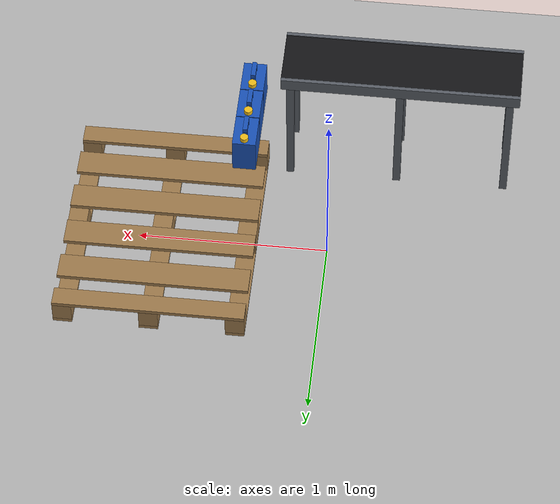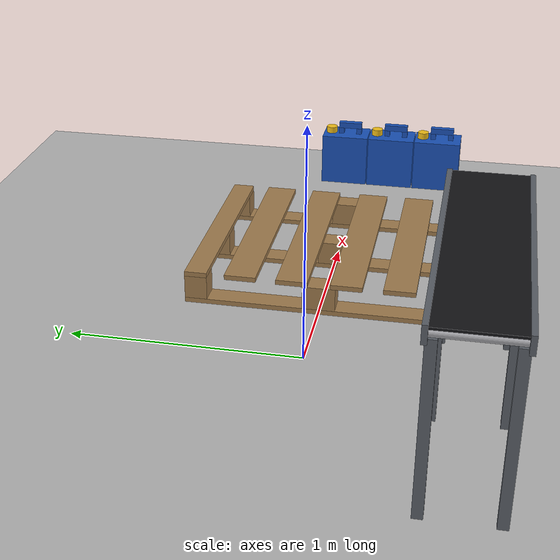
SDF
<sdf version="1.8">
 <world name="moz1_jerrycan">
  <model name="ground_plane">
   <static>true</static>
   <link name="link">
    <collision name="c"><geometry><plane><normal>0 0 1</normal><size>100 100</size></plane></geometry></collision>
    <visual name="v">
     <geometry><plane><normal>0 0 1</normal><size>100 100</size></plane></geometry>
     <material><ambient>0.7 0.7 0.7 1</ambient><diffuse>0.7 0.7 0.7 1</diffuse></material>
    </visual>
   </link>
  </model>
  <model name="pallet">
   <static>true</static>
   <pose>0.3710 0.0000 0.0000 0 0 0</pose>
   <link name="link">
    <collision name="c">
     <pose>0.5000 0.0000 0.0750 0 0 0</pose>
     <geometry><box><size>1.0000 1.2000 0.1500</size></box></geometry>
    </collision>
    <visual name="deck0">
     <pose>0.5000 -0.5500 0.1390 0 0 0</pose>
     <geometry><box><size>1.0000 0.1000 0.0220</size></box></geometry>
     <material><ambient>0.62 0.48 0.30 1</ambient><diffuse>0.62 0.48 0.30 1</diffuse></material>
    </visual>
    <visual name="deck1">
     <pose>0.5000 -0.3500 0.1390 0 0 0</pose>
     <geometry><box><size>1.0000 0.1400 0.0220</size></box></geometry>
     <material><ambient>0.62 0.48 0.30 1</ambient><diffuse>0.62 0.48 0.30 1</diffuse></material>
    </visual>
    <visual name="deck2">
     <pose>0.5000 -0.1200 0.1390 0 0 0</pose>
     <geometry><box><size>1.0000 0.1400 0.0220</size></box></geometry>
     <material><ambient>0.62 0.48 0.30 1</ambient><diffuse>0.62 0.48 0.30 1</diffuse></material>
    </visual>
    <visual name="deck3">
     <pose>0.5000 0.1200 0.1390 0 0 0</pose>
     <geometry><box><size>1.0000 0.1400 0.0220</size></box></geometry>
     <material><ambient>0.62 0.48 0.30 1</ambient><diffuse>0.62 0.48 0.30 1</diffuse></material>
    </visual>
    <visual name="deck4">
     <pose>0.5000 0.3500 0.1390 0 0 0</pose>
     <geometry><box><size>1.0000 0.1400 0.0220</size></box></geometry>
     <material><ambient>0.62 0.48 0.30 1</ambient><diffuse>0.62 0.48 0.30 1</diffuse></material>
    </visual>
    <visual name="deck5">
     <pose>0.5000 0.5500 0.1390 0 0 0</pose>
     <geometry><box><size>1.0000 0.1000 0.0220</size></box></geometry>
     <material><ambient>0.62 0.48 0.30 1</ambient><diffuse>0.62 0.48 0.30 1</diffuse></material>
    </visual>
    <visual name="bottom0">
     <pose>0.0500 0.0000 0.0110 0 0 0</pose>
     <geometry><box><size>0.1000 1.2000 0.0220</size></box></geometry>
     <material><ambient>0.62 0.48 0.30 1</ambient><diffuse>0.62 0.48 0.30 1</diffuse></material>
    </visual>
    <visual name="block00">
     <pose>0.0500 -0.5500 0.0750 0 0 0</pose>
     <geometry><box><size>0.1000 0.1000 0.1060</size></box></geometry>
     <material><ambient>0.62 0.48 0.30 1</ambient><diffuse>0.62 0.48 0.30 1</diffuse></material>
    </visual>
    <visual name="block01">
     <pose>0.0500 0.0000 0.0750 0 0 0</pose>
     <geometry><box><size>0.1000 0.1450 0.1060</size></box></geometry>
     <material><ambient>0.62 0.48 0.30 1</ambient><diffuse>0.62 0.48 0.30 1</diffuse></material>
    </visual>
    <visual name="block02">
     <pose>0.0500 0.5500 0.0750 0 0 0</pose>
     <geometry><box><size>0.1000 0.1000 0.1060</size></box></geometry>
     <material><ambient>0.62 0.48 0.30 1</ambient><diffuse>0.62 0.48 0.30 1</diffuse></material>
    </visual>
    <visual name="bottom1">
     <pose>0.5000 0.0000 0.0110 0 0 0</pose>
     <geometry><box><size>0.1000 1.2000 0.0220</size></box></geometry>
     <material><ambient>0.62 0.48 0.30 1</ambient><diffuse>0.62 0.48 0.30 1</diffuse></material>
    </visual>
    <visual name="block10">
     <pose>0.5000 -0.5500 0.0750 0 0 0</pose>
     <geometry><box><size>0.1000 0.1000 0.1060</size></box></geometry>
     <material><ambient>0.62 0.48 0.30 1</ambient><diffuse>0.62 0.48 0.30 1</diffuse></material>
    </visual>
    <visual name="block11">
     <pose>0.5000 0.0000 0.0750 0 0 0</pose>
     <geometry><box><size>0.1000 0.1450 0.1060</size></box></geometry>
     <material><ambient>0.62 0.48 0.30 1</ambient><diffuse>0.62 0.48 0.30 1</diffuse></material>
    </visual>
    <visual name="block12">
     <pose>0.5000 0.5500 0.0750 0 0 0</pose>
     <geometry><box><size>0.1000 0.1000 0.1060</size></box></geometry>
     <material><ambient>0.62 0.48 0.30 1</ambient><diffuse>0.62 0.48 0.30 1</diffuse></material>
    </visual>
    <visual name="bottom2">
     <pose>0.9500 0.0000 0.0110 0 0 0</pose>
     <geometry><box><size>0.1000 1.2000 0.0220</size></box></geometry>
     <material><ambient>0.62 0.48 0.30 1</ambient><diffuse>0.62 0.48 0.30 1</diffuse></material>
    </visual>
    <visual name="block20">
     <pose>0.9500 -0.5500 0.0750 0 0 0</pose>
     <geometry><box><size>0.1000 0.1000 0.1060</size></box></geometry>
     <material><ambient>0.62 0.48 0.30 1</ambient><diffuse>0.62 0.48 0.30 1</diffuse></material>
    </visual>
    <visual name="block21">
     <pose>0.9500 0.0000 0.0750 0 0 0</pose>
     <geometry><box><size>0.1000 0.1450 0.1060</size></box></geometry>
     <material><ambient>0.62 0.48 0.30 1</ambient><diffuse>0.62 0.48 0.30 1</diffuse></material>
    </visual>
    <visual name="block22">
     <pose>0.9500 0.5500 0.0750 0 0 0</pose>
     <geometry><box><size>0.1000 0.1000 0.1060</size></box></geometry>
     <material><ambient>0.62 0.48 0.30 1</ambient><diffuse>0.62 0.48 0.30 1</diffuse></material>
    </visual>
   </link>
  </model>
  <model name="jerrycan_right_1">
   <pose>0.4330 -0.0920 0.6300 0 0 0</pose>
   <link name="link">
    <inertial>
     <pose>0.0000 0.0000 0.1200 0 0 0</pose>
     <mass>4.200</mass>
     <inertia><ixx>0.03150</ixx><iyy>0.02520</iyy><izz>0.01638</izz><ixy>0</ixy><ixz>0</ixz><iyz>0</iyz></inertia>
    </inertial>
    <visual name="body">
     <pose>0.0000 0.0000 0.0975 0 0 0</pose>
     <geometry><box><size>0.1200 0.1800 0.1950</size></box></geometry>
     <material><ambient>0.10 0.32 0.72 1</ambient><diffuse>0.10 0.32 0.72 1</diffuse></material>
    </visual>
    <collision name="body_c">
     <pose>0.0000 0.0000 0.0975 0 0 0</pose>
     <geometry><box><size>0.1200 0.1800 0.1950</size></box></geometry>
     <surface><friction><ode><mu>0.8</mu><mu2>0.8</mu2></ode></friction></surface>
    </collision>
    <visual name="bar">
     <pose>0.0000 -0.0150 0.2290 0 0 0</pose>
     <geometry><box><size>0.0240 0.0900 0.0220</size></box></geometry>
     <material><ambient>0.10 0.32 0.72 1</ambient><diffuse>0.10 0.32 0.72 1</diffuse></material>
    </visual>
    <visual name="post_a">
     <pose>0.0000 -0.0500 0.2065 0 0 0</pose>
     <geometry><box><size>0.0240 0.0200 0.0230</size></box></geometry>
     <material><ambient>0.10 0.32 0.72 1</ambient><diffuse>0.10 0.32 0.72 1</diffuse></material>
    </visual>
    <visual name="post_b">
     <pose>0.0000 0.0200 0.2065 0 0 0</pose>
     <geometry><box><size>0.0240 0.0200 0.0230</size></box></geometry>
     <material><ambient>0.10 0.32 0.72 1</ambient><diffuse>0.10 0.32 0.72 1</diffuse></material>
    </visual>
    <visual name="cap">
     <pose>0.0000 0.0600 0.2070 0 0 0</pose>
     <geometry><cylinder><radius>0.021</radius><length>0.024</length></cylinder></geometry>
     <material><ambient>0.95 0.75 0.10 1</ambient><diffuse>0.95 0.75 0.10 1</diffuse></material>
    </visual>
   </link>
  </model>
  <model name="jerrycan_right_2">
   <pose>0.4330 -0.2760 0.6300 0 0 0</pose>
   <link name="link">
    <inertial>
     <pose>0.0000 0.0000 0.1200 0 0 0</pose>
     <mass>4.200</mass>
     <inertia><ixx>0.03150</ixx><iyy>0.02520</iyy><izz>0.01638</izz><ixy>0</ixy><ixz>0</ixz><iyz>0</iyz></inertia>
    </inertial>
    <visual name="body">
     <pose>0.0000 0.0000 0.0975 0 0 0</pose>
     <geometry><box><size>0.1200 0.1800 0.1950</size></box></geometry>
     <material><ambient>0.10 0.32 0.72 1</ambient><diffuse>0.10 0.32 0.72 1</diffuse></material>
    </visual>
    <collision name="body_c">
     <pose>0.0000 0.0000 0.0975 0 0 0</pose>
     <geometry><box><size>0.1200 0.1800 0.1950</size></box></geometry>
     <surface><friction><ode><mu>0.8</mu><mu2>0.8</mu2></ode></friction></surface>
    </collision>
    <visual name="bar">
     <pose>0.0000 -0.0150 0.2290 0 0 0</pose>
     <geometry><box><size>0.0240 0.0900 0.0220</size></box></geometry>
     <material><ambient>0.10 0.32 0.72 1</ambient><diffuse>0.10 0.32 0.72 1</diffuse></material>
    </visual>
    <visual name="post_a">
     <pose>0.0000 -0.0500 0.2065 0 0 0</pose>
     <geometry><box><size>0.0240 0.0200 0.0230</size></box></geometry>
     <material><ambient>0.10 0.32 0.72 1</ambient><diffuse>0.10 0.32 0.72 1</diffuse></material>
    </visual>
    <visual name="post_b">
     <pose>0.0000 0.0200 0.2065 0 0 0</pose>
     <geometry><box><size>0.0240 0.0200 0.0230</size></box></geometry>
     <material><ambient>0.10 0.32 0.72 1</ambient><diffuse>0.10 0.32 0.72 1</diffuse></material>
    </visual>
    <visual name="cap">
     <pose>0.0000 0.0600 0.2070 0 0 0</pose>
     <geometry><cylinder><radius>0.021</radius><length>0.024</length></cylinder></geometry>
     <material><ambient>0.95 0.75 0.10 1</ambient><diffuse>0.95 0.75 0.10 1</diffuse></material>
    </visual>
   </link>
  </model>
  <model name="jerrycan_right_3">
   <pose>0.4330 -0.4600 0.6300 0 0 0</pose>
   <link name="link">
    <inertial>
     <pose>0.0000 0.0000 0.1200 0 0 0</pose>
     <mass>4.200</mass>
     <inertia><ixx>0.03150</ixx><iyy>0.02520</iyy><izz>0.01638</izz><ixy>0</ixy><ixz>0</ixz><iyz>0</iyz></inertia>
    </inertial>
    <visual name="body">
     <pose>0.0000 0.0000 0.0975 0 0 0</pose>
     <geometry><box><size>0.1200 0.1800 0.1950</size></box></geometry>
     <material><ambient>0.10 0.32 0.72 1</ambient><diffuse>0.10 0.32 0.72 1</diffuse></material>
    </visual>
    <collision name="body_c">
     <pose>0.0000 0.0000 0.0975 0 0 0</pose>
     <geometry><box><size>0.1200 0.1800 0.1950</size></box></geometry>
     <surface><friction><ode><mu>0.8</mu><mu2>0.8</mu2></ode></friction></surface>
    </collision>
    <visual name="bar">
     <pose>0.0000 -0.0150 0.2290 0 0 0</pose>
     <geometry><box><size>0.0240 0.0900 0.0220</size></box></geometry>
     <material><ambient>0.10 0.32 0.72 1</ambient><diffuse>0.10 0.32 0.72 1</diffuse></material>
    </visual>
    <visual name="post_a">
     <pose>0.0000 -0.0500 0.2065 0 0 0</pose>
     <geometry><box><size>0.0240 0.0200 0.0230</size></box></geometry>
     <material><ambient>0.10 0.32 0.72 1</ambient><diffuse>0.10 0.32 0.72 1</diffuse></material>
    </visual>
    <visual name="post_b">
     <pose>0.0000 0.0200 0.2065 0 0 0</pose>
     <geometry><box><size>0.0240 0.0200 0.0230</size></box></geometry>
     <material><ambient>0.10 0.32 0.72 1</ambient><diffuse>0.10 0.32 0.72 1</diffuse></material>
    </visual>
    <visual name="cap">
     <pose>0.0000 0.0600 0.2070 0 0 0</pose>
     <geometry><cylinder><radius>0.021</radius><length>0.024</length></cylinder></geometry>
     <material><ambient>0.95 0.75 0.10 1</ambient><diffuse>0.95 0.75 0.10 1</diffuse></material>
    </visual>
   </link>
  </model>
  <model name="conveyor_right">
   <static>true</static>
   <pose>-0.3250 -0.6800 0.0000 0 0 0</pose>
   <link name="link">
    <collision name="c">
     <pose>0.0000 0.0000 0.3750 0 0 0</pose>
     <geometry><box><size>1.2500 0.3400 0.7500</size></box></geometry>
    </collision>
    <visual name="belt">
     <pose>0.0000 0.0000 0.7450 0 0 0</pose>
     <geometry><box><size>1.2500 0.3000 0.0100</size></box></geometry>
     <material><ambient>0.08 0.08 0.09 1</ambient><diffuse>0.08 0.08 0.09 1</diffuse></material>
    </visual>
    <visual name="rail_a">
     <pose>0.0000 0.1600 0.7200 0 0 0</pose>
     <geometry><box><size>1.2500 0.0200 0.0700</size></box></geometry>
     <material><ambient>0.35 0.37 0.40 1</ambient><diffuse>0.35 0.37 0.40 1</diffuse></material>
    </visual>
    <visual name="rail_b">
     <pose>0.0000 -0.1600 0.7200 0 0 0</pose>
     <geometry><box><size>1.2500 0.0200 0.0700</size></box></geometry>
     <material><ambient>0.35 0.37 0.40 1</ambient><diffuse>0.35 0.37 0.40 1</diffuse></material>
    </visual>
    <visual name="roller0">
     <pose>-0.5850 0.0000 0.7150 1.5708 0 0</pose>
     <geometry><cylinder><radius>0.02</radius><length>0.320</length></cylinder></geometry>
     <material><ambient>0.7 0.7 0.72 1</ambient><diffuse>0.7 0.7 0.72 1</diffuse></material>
    </visual>
    <visual name="roller1">
     <pose>-0.5050 0.0000 0.7150 1.5708 0 0</pose>
     <geometry><cylinder><radius>0.02</radius><length>0.320</length></cylinder></geometry>
     <material><ambient>0.7 0.7 0.72 1</ambient><diffuse>0.7 0.7 0.72 1</diffuse></material>
    </visual>
    <visual name="roller2">
     <pose>-0.4250 0.0000 0.7150 1.5708 0 0</pose>
     <geometry><cylinder><radius>0.02</radius><length>0.320</length></cylinder></geometry>
     <material><ambient>0.7 0.7 0.72 1</ambient><diffuse>0.7 0.7 0.72 1</diffuse></material>
    </visual>
    <visual name="roller3">
     <pose>-0.3450 0.0000 0.7150 1.5708 0 0</pose>
     <geometry><cylinder><radius>0.02</radius><length>0.320</length></cylinder></geometry>
     <material><ambient>0.7 0.7 0.72 1</ambient><diffuse>0.7 0.7 0.72 1</diffuse></material>
    </visual>
    <visual name="roller4">
     <pose>-0.2650 0.0000 0.7150 1.5708 0 0</pose>
     <geometry><cylinder><radius>0.02</radius><length>0.320</length></cylinder></geometry>
     <material><ambient>0.7 0.7 0.72 1</ambient><diffuse>0.7 0.7 0.72 1</diffuse></material>
    </visual>
    <visual name="roller5">
     <pose>-0.1850 0.0000 0.7150 1.5708 0 0</pose>
     <geometry><cylinder><radius>0.02</radius><length>0.320</length></cylinder></geometry>
     <material><ambient>0.7 0.7 0.72 1</ambient><diffuse>0.7 0.7 0.72 1</diffuse></material>
    </visual>
    <visual name="roller6">
     <pose>-0.1050 0.0000 0.7150 1.5708 0 0</pose>
     <geometry><cylinder><radius>0.02</radius><length>0.320</length></cylinder></geometry>
     <material><ambient>0.7 0.7 0.72 1</ambient><diffuse>0.7 0.7 0.72 1</diffuse></material>
    </visual>
    <visual name="roller7">
     <pose>-0.0250 0.0000 0.7150 1.5708 0 0</pose>
     <geometry><cylinder><radius>0.02</radius><length>0.320</length></cylinder></geometry>
     <material><ambient>0.7 0.7 0.72 1</ambient><diffuse>0.7 0.7 0.72 1</diffuse></material>
    </visual>
    <visual name="roller8">
     <pose>0.0550 0.0000 0.7150 1.5708 0 0</pose>
     <geometry><cylinder><radius>0.02</radius><length>0.320</length></cylinder></geometry>
     <material><ambient>0.7 0.7 0.72 1</ambient><diffuse>0.7 0.7 0.72 1</diffuse></material>
    </visual>
    <visual name="roller9">
     <pose>0.1350 0.0000 0.7150 1.5708 0 0</pose>
     <geometry><cylinder><radius>0.02</radius><length>0.320</length></cylinder></geometry>
     <material><ambient>0.7 0.7 0.72 1</ambient><diffuse>0.7 0.7 0.72 1</diffuse></material>
    </visual>
    <visual name="roller10">
     <pose>0.2150 0.0000 0.7150 1.5708 0 0</pose>
     <geometry><cylinder><radius>0.02</radius><length>0.320</length></cylinder></geometry>
     <material><ambient>0.7 0.7 0.72 1</ambient><diffuse>0.7 0.7 0.72 1</diffuse></material>
    </visual>
    <visual name="roller11">
     <pose>0.2950 0.0000 0.7150 1.5708 0 0</pose>
     <geometry><cylinder><radius>0.02</radius><length>0.320</length></cylinder></geometry>
     <material><ambient>0.7 0.7 0.72 1</ambient><diffuse>0.7 0.7 0.72 1</diffuse></material>
    </visual>
    <visual name="roller12">
     <pose>0.3750 0.0000 0.7150 1.5708 0 0</pose>
     <geometry><cylinder><radius>0.02</radius><length>0.320</length></cylinder></geometry>
     <material><ambient>0.7 0.7 0.72 1</ambient><diffuse>0.7 0.7 0.72 1</diffuse></material>
    </visual>
    <visual name="roller13">
     <pose>0.4550 0.0000 0.7150 1.5708 0 0</pose>
     <geometry><cylinder><radius>0.02</radius><length>0.320</length></cylinder></geometry>
     <material><ambient>0.7 0.7 0.72 1</ambient><diffuse>0.7 0.7 0.72 1</diffuse></material>
    </visual>
    <visual name="roller14">
     <pose>0.5350 0.0000 0.7150 1.5708 0 0</pose>
     <geometry><cylinder><radius>0.02</radius><length>0.320</length></cylinder></geometry>
     <material><ambient>0.7 0.7 0.72 1</ambient><diffuse>0.7 0.7 0.72 1</diffuse></material>
    </visual>
    <visual name="leg00">
     <pose>-0.5750 -0.1400 0.3450 0 0 0</pose>
     <geometry><box><size>0.0400 0.0400 0.6900</size></box></geometry>
     <material><ambient>0.35 0.37 0.40 1</ambient><diffuse>0.35 0.37 0.40 1</diffuse></material>
    </visual>
    <visual name="leg01">
     <pose>-0.5750 0.1400 0.3450 0 0 0</pose>
     <geometry><box><size>0.0400 0.0400 0.6900</size></box></geometry>
     <material><ambient>0.35 0.37 0.40 1</ambient><diffuse>0.35 0.37 0.40 1</diffuse></material>
    </visual>
    <visual name="leg10">
     <pose>0.0000 -0.1400 0.3450 0 0 0</pose>
     <geometry><box><size>0.0400 0.0400 0.6900</size></box></geometry>
     <material><ambient>0.35 0.37 0.40 1</ambient><diffuse>0.35 0.37 0.40 1</diffuse></material>
    </visual>
    <visual name="leg11">
     <pose>0.0000 0.1400 0.3450 0 0 0</pose>
     <geometry><box><size>0.0400 0.0400 0.6900</size></box></geometry>
     <material><ambient>0.35 0.37 0.40 1</ambient><diffuse>0.35 0.37 0.40 1</diffuse></material>
    </visual>
    <visual name="leg20">
     <pose>0.5750 -0.1400 0.3450 0 0 0</pose>
     <geometry><box><size>0.0400 0.0400 0.6900</size></box></geometry>
     <material><ambient>0.35 0.37 0.40 1</ambient><diffuse>0.35 0.37 0.40 1</diffuse></material>
    </visual>
    <visual name="leg21">
     <pose>0.5750 0.1400 0.3450 0 0 0</pose>
     <geometry><box><size>0.0400 0.0400 0.6900</size></box></geometry>
     <material><ambient>0.35 0.37 0.40 1</ambient><diffuse>0.35 0.37 0.40 1</diffuse></material>
    </visual>
   </link>
  </model>
 </world>
</sdf>
